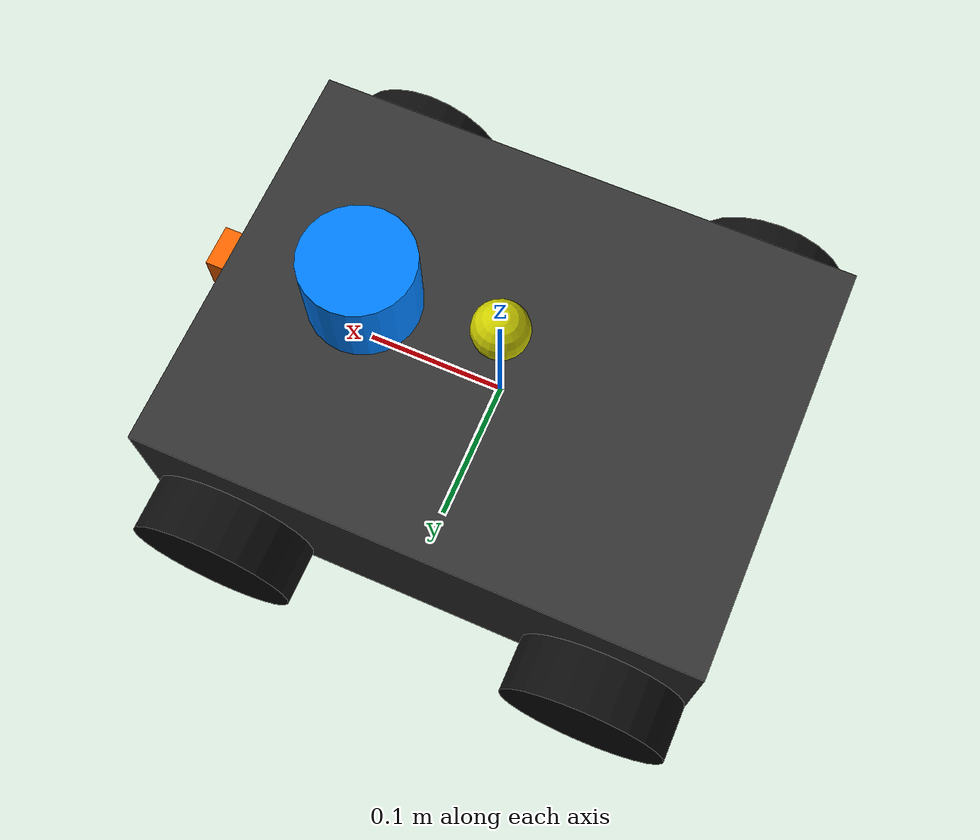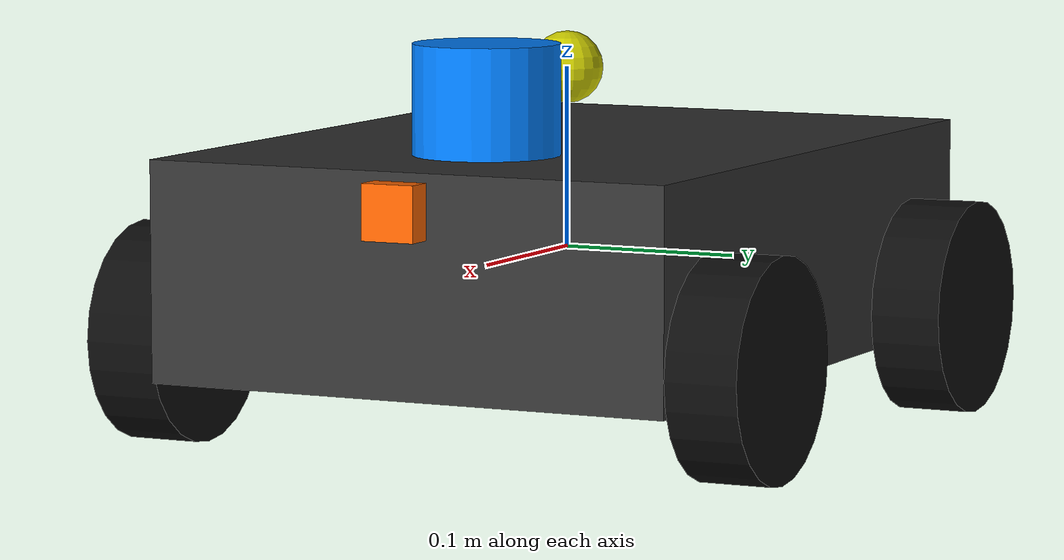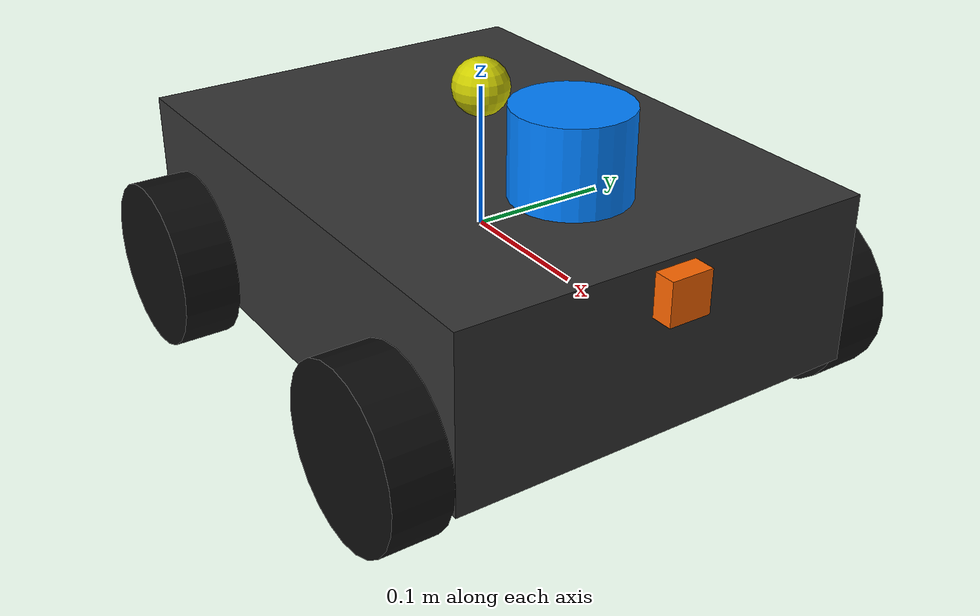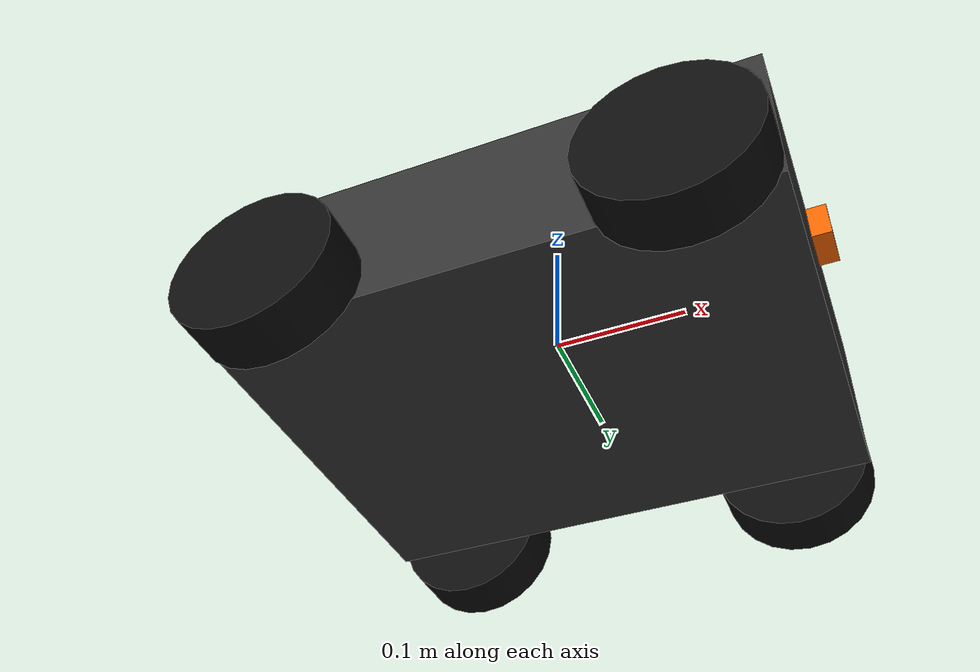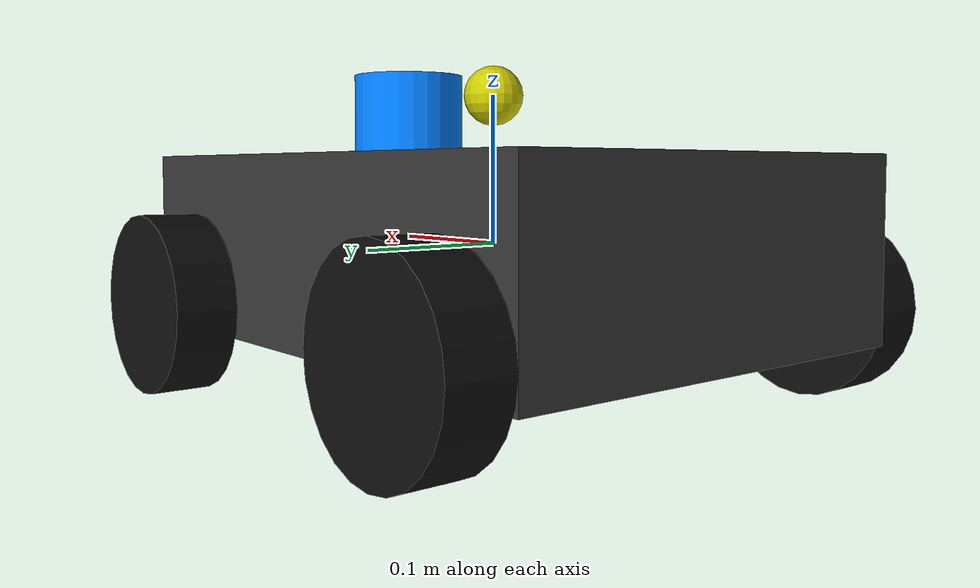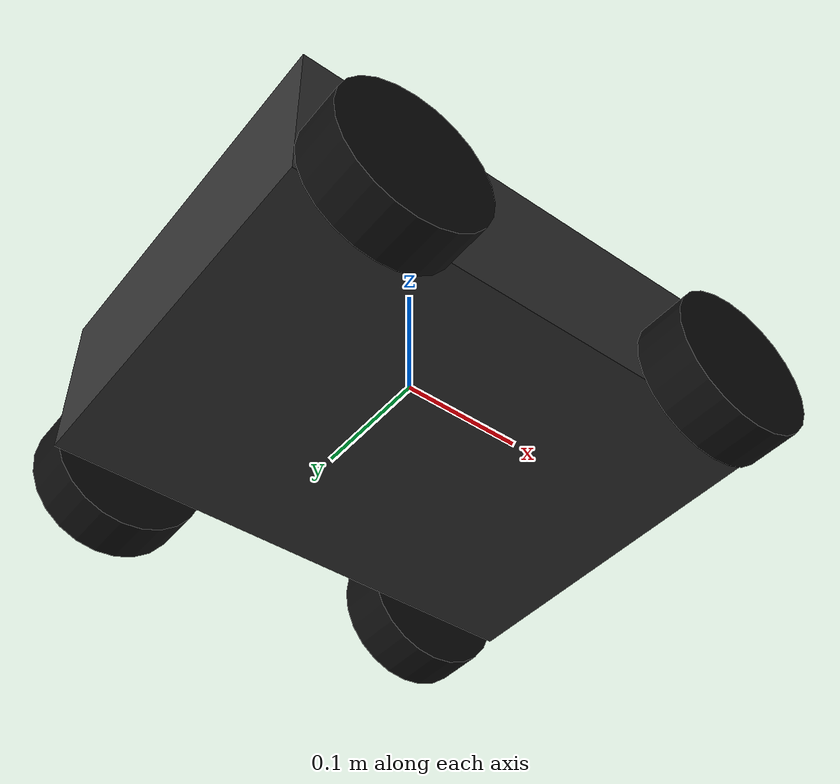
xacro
<?xml version="1.0"?>
<robot name="crawler" xmlns:xacro="http://www.ros.org/wiki/xacro">

  <!-- ==================== PROPERTIES ==================== -->
  <xacro:property name="chassis_length" value="0.4"/>
  <xacro:property name="chassis_width"  value="0.3"/>
  <xacro:property name="chassis_height" value="0.12"/>
  <xacro:property name="chassis_mass"   value="3.0"/>

  <xacro:property name="wheel_radius"   value="0.06"/>
  <xacro:property name="wheel_width"    value="0.04"/>
  <xacro:property name="wheel_mass"     value="0.4"/>

  <!-- ==================== BASE LINK ==================== -->
  <link name="base_link">
    <visual>
      <geometry>
        <box size="${chassis_length} ${chassis_width} ${chassis_height}"/>
      </geometry>
      <material name="dark_grey">
        <color rgba="0.2 0.2 0.2 1.0"/>
      </material>
    </visual>
    <collision>
      <geometry>
        <box size="${chassis_length} ${chassis_width} ${chassis_height}"/>
      </geometry>
    </collision>
    <inertial>
      <mass value="${chassis_mass}"/>
      <inertia ixx="0.0146" ixy="0" ixz="0"
               iyy="0.0206" iyz="0"
               izz="0.0316"/>
    </inertial>
  </link>

  <!-- ==================== WHEEL MACRO ==================== -->
  <xacro:macro name="wheel" params="name x_pos y_pos">

    <link name="${name}_wheel">
      <visual>
        <geometry>
          <cylinder radius="${wheel_radius}" length="${wheel_width}"/>
        </geometry>
        <material name="black">
          <color rgba="0.05 0.05 0.05 1.0"/>
        </material>
      </visual>
      <collision>
        <geometry>
          <cylinder radius="${wheel_radius}" length="${wheel_width}"/>
        </geometry>
      </collision>
      <inertial>
        <mass value="${wheel_mass}"/>
        <inertia ixx="0.0006" ixy="0" ixz="0"
                 iyy="0.0006" iyz="0"
                 izz="0.0012"/>
      </inertial>
    </link>

    <joint name="${name}_wheel_joint" type="continuous">
      <parent link="base_link"/>
      <child  link="${name}_wheel"/>
      <origin xyz="${x_pos} ${y_pos} -0.04" rpy="-1.5708 0 0"/>
      <axis xyz="0 0 1"/>
    </joint>

  </xacro:macro>

  <!-- Spawn 4 wheels -->
  <xacro:wheel name="front_left"  x_pos=" 0.14" y_pos=" 0.17"/>
  <xacro:wheel name="front_right" x_pos=" 0.14" y_pos="-0.17"/>
  <xacro:wheel name="rear_left"   x_pos="-0.14" y_pos=" 0.17"/>
  <xacro:wheel name="rear_right"  x_pos="-0.14" y_pos="-0.17"/>

  <!-- ==================== LIDAR ==================== -->
  <link name="lidar_link">
    <visual>
      <geometry><cylinder radius="0.04" length="0.06"/></geometry>
      <material name="lidar_color">
        <color rgba="0.0 0.5 1.0 1.0"/>
      </material>
    </visual>
  </link>

  <joint name="lidar_joint" type="fixed">
    <parent link="base_link"/>
    <child  link="lidar_link"/>
    <origin xyz="0.1 0 0.09" rpy="0 0 0"/>
  </joint>

  <!-- ==================== THERMAL CAMERA ==================== -->
  <link name="thermal_cam_link">
    <visual>
      <geometry><box size="0.03 0.03 0.03"/></geometry>
      <material name="sensor_color">
        <color rgba="1.0 0.4 0.0 1.0"/>
      </material>
    </visual>
  </link>

  <joint name="thermal_cam_joint" type="fixed">
    <parent link="base_link"/>
    <child  link="thermal_cam_link"/>
    <origin xyz="0.2 0 0.04" rpy="0 0 0"/>
  </joint>

  <!-- ==================== MICROPHONE ARRAY ==================== -->
  <link name="mic_array_link">
    <visual>
      <geometry><sphere radius="0.02"/></geometry>
      <material name="mic_color">
        <color rgba="0.8 0.8 0.0 1.0"/>
      </material>
    </visual>
  </link>

  <joint name="mic_array_joint" type="fixed">
    <parent link="base_link"/>
    <child  link="mic_array_link"/>
    <origin xyz="0.0 0 0.1" rpy="0 0 0"/>
  </joint>

  <!-- ==================== ROS2 CONTROL PLUGIN ==================== -->
  <gazebo>
    <plugin name="diff_drive" filename="libgazebo_ros_diff_drive.so">
      <left_joint>front_left_wheel_joint</left_joint>
      <right_joint>front_right_wheel_joint</right_joint>
      <wheel_separation>0.34</wheel_separation>
      <wheel_diameter>0.12</wheel_diameter>
      <max_wheel_torque>20</max_wheel_torque>
      <command_topic>cmd_vel</command_topic>
      <odometry_topic>odom</odometry_topic>
    </plugin>
  </gazebo>

  <!-- LiDAR Plugin -->
  <gazebo reference="lidar_link">
    <sensor name="lidar" type="ray">
      <always_on>true</always_on>
      <update_rate>10</update_rate>
      <ray>
        <scan>
          <horizontal>
            <samples>360</samples>
            <min_angle>-3.14159</min_angle>
            <max_angle>3.14159</max_angle>
          </horizontal>
        </scan>
        <range>
          <min>0.15</min>
          <max>12.0</max>
        </range>
      </ray>
      <plugin name="lidar_plugin" filename="libgazebo_ros_ray_sensor.so">
        <ros><topic>scan</topic></ros>
        <output_type>sensor_msgs/LaserScan</output_type>
      </plugin>
    </sensor>
  </gazebo>

</robot>
